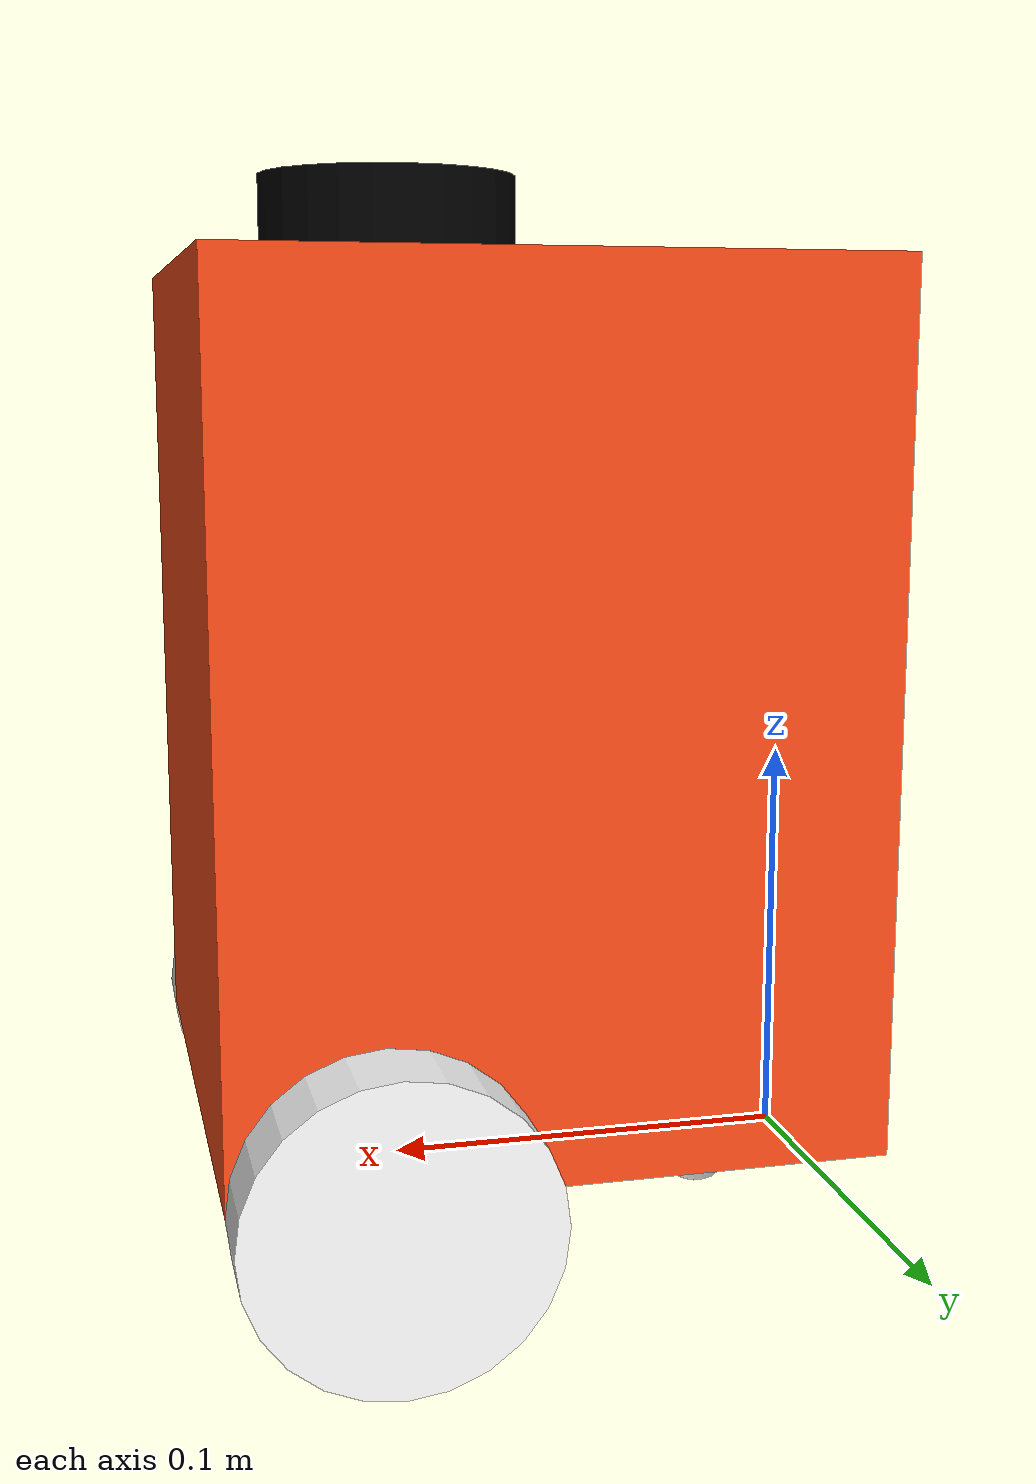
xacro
<?xml version="1.0"?>
<robot xmlns:xacro="http://www.ros.org/wiki/xacro" name="robot2">

    <xacro:include filename="inertia.xacro"/>

    <material name="white">
        <color rgba="1 1 1 1" />
    </material>

    <material name="orange">
        <color rgba="1 0.3 0.1 1"/>
    </material>

    <material name="blue">
        <color rgba="0.2 0.2 1 1"/>
    </material>

    <material name="black">
        <color rgba="0 0 0 1"/>
    </material>

    <!-- BASE LINK -->

    <link name="base_link2">
    </link>

    <!-- CHASSIS LINK -->

    <joint name="/robot2/chassis_joint" type="fixed">
        <parent link="base_link2"/>
        <child link="/robot2/chassis"/>
        <origin xyz="0 0 0.02"/>
    </joint>

    <link name="/robot2/chassis">
        <visual>
            <origin xyz="0.075 0 0.1"/>
            <geometry>
                <box size="0.15 0.15 0.2"/>
            </geometry>
            <material name="orange"/>
        </visual>
        <collision>
            <origin xyz="0.075 0 0.1"/>
            <geometry>
                <box size="0.15 0.15 0.2"/>
            </geometry>
        </collision>
        <xacro:inertial_box mass="1" x="0.15" y="0.15" z="0.3">
            <origin xyz="0.075 0 0.1" rpy="0 0 0"/>
        </xacro:inertial_box>
    </link>
    <gazebo reference="/robot2/chassis">
        <material>Gazebo/Orange</material>
    </gazebo>

    <!-- LEFT WHEEL LINK -->

    <joint name="/robot2/left_wheel_joint" type="continuous">
        <parent link="/robot2/chassis"/>
        <child link="/robot2/left_wheel"/>
        <origin xyz="0.115 0.085 0" rpy="-${pi/2} 0 0" />
        <axis xyz="0 0 1"/>
    </joint>

    <link name="/robot2/left_wheel">
        <visual>
            <geometry>
                <cylinder radius="0.035" length="0.02"/>
            </geometry>
            <material name="white"/>
        </visual>
        <collision>
            <geometry>
                <cylinder radius="0.035" length="0.02"/>
            </geometry>
        </collision>
        <xacro:inertial_cylinder mass="0.05" length="0.02" radius="0.035">
            <origin xyz="0 0 0" rpy="0 0 0"/>
        </xacro:inertial_cylinder>
    </link>

    <gazebo reference="/robot2/left_wheel">
        <material>Gazebo/White</material>
    </gazebo>

    <!-- RIGHT WHEEL LINK -->

    <joint name="/robot2/right_wheel_joint" type="continuous">
        <parent link="/robot2/chassis"/>
        <child link="/robot2/right_wheel"/>
        <origin xyz="0.115 -0.085 0" rpy="${pi/2} 0 0" />
        <axis xyz="0 0 -1"/>
    </joint>

    <link name="/robot2/right_wheel">
        <visual>
            <geometry>
                <cylinder radius="0.035" length="0.02"/>
            </geometry>
            <material name="white"/>
        </visual>
        <collision>
            <geometry>
                <cylinder radius="0.035" length="0.02"/>
            </geometry>
        </collision>
        <xacro:inertial_cylinder mass="0.05" length="0.02" radius="0.035">
            <origin xyz="0 0 0" rpy="0 0 0"/>
        </xacro:inertial_cylinder>
    </link>

    <gazebo reference="/robot2/right_wheel">
        <material>Gazebo/White</material>
    </gazebo>

    <!-- DIFF DRIVE GAZEBO PLUGIN -->
    <gazebo>
        <plugin name="diff_drive_robot2" filename="libgazebo_ros_diff_drive.so">

            <!-- Wheel Information -->
            <left_joint>/robot2/left_wheel_joint</left_joint>
            <right_joint>/robot2/right_wheel_joint</right_joint>
            <wheel_separation>0.17</wheel_separation>
            <wheel_diameter>0.07</wheel_diameter>

            <!-- Limits -->
            <max_wheel_torque>50</max_wheel_torque>
            <max_wheel_acceleration>50.0</max_wheel_acceleration>

            <!-- Output -->
            <odometry_frame>odom</odometry_frame>
            <robot_base_frame>base_link2</robot_base_frame>

            <publish_odom>true</publish_odom>
            <publish_odom_tf>true</publish_odom_tf>
            <publish_wheel_tf>true</publish_wheel_tf>

            <!-- ROS namespace and remapping -->
            <ros>
                <namespace>/robot2</namespace>
                <remapping>cmd_vel:=/robot2/cmd_vel</remapping>

            </ros>
        </plugin>
    </gazebo>

    <!-- LIDAR LINK -->
    <joint name="/robot2/laser_joint" type="fixed">
        <parent link="/robot2/chassis"/>
        <child link="laser_frame_2"/>
        <origin xyz="0.1 0 0.200" rpy="0 0 0"/>
    </joint>

    <link name="laser_frame_2">
        <visual>
            <geometry>
                <cylinder radius="0.03" length="0.04"/>
            </geometry>
            <material name="black"/>
        </visual>
        <collision>
            <geometry>
                <cylinder radius="0.03" length="0.04"/>
            </geometry>
        </collision>
        <xacro:inertial_cylinder mass="0.1" length="0.04" radius="0.05">
            <origin xyz="0 0 0" rpy="0 0 0"/>
        </xacro:inertial_cylinder>
    </link>

    <gazebo reference="laser_frame_2">
        <material>Gazebo/Black</material>
        <sensor name="laser" type="ray">
            <pose> 0 0 0 0 0 0 </pose>
            <visualize>true</visualize>
            <update_rate>10</update_rate>
            <ray>
                <scan>
                    <horizontal>
                        <samples>360</samples>
                        <min_angle>-3.14</min_angle>
                        <max_angle>3.14</max_angle>
                    </horizontal>
                </scan>
                <range>
                    <min>0.3</min>
                    <max>4</max>
                </range>
            </ray>
            <plugin name="laser_controller_robot2" filename="libgazebo_ros_ray_sensor.so">
                <ros>
                    <argument>~/out:=scan_robot2</argument>
                </ros>
                <output_type>sensor_msgs/LaserScan</output_type>
                <frame_name>laser_frame_2</frame_name>
            </plugin>
        </sensor>
    </gazebo>

    <!-- CASTER WHEEL LINK -->

    <joint name="/robot2/caster_wheel_joint_cylinder" type="fixed">
        <parent link="/robot2/chassis"/>
        <child link="/robot2/caster_wheel_cylinder"/>
        <origin xyz="0.02 0 0"/>
    </joint>

    <link name="/robot2/caster_wheel_cylinder">
        <visual>
            <geometry>
                <cylinder radius="0.01" length="0.05"/>
            </geometry>
            <material name="black"/>
        </visual>
        <collision>
            <geometry>
                <cylinder radius="0.01" length="0.05"/>
            </geometry>
        </collision>
        <xacro:inertial_cylinder mass="0.5" length="0.05" radius="0.01">
            <origin xyz="0 0 0" rpy="0 0 0"/>
        </xacro:inertial_cylinder>
    </link>

    <gazebo reference="/robot2/caster_wheel_cylinder">
        <material>Gazebo/Black</material>

    </gazebo>

    <joint name="/robot2/caster_wheel_joint_sphere" type="fixed">
        <parent link="/robot2/chassis"/>
        <child link="/robot2/caster_wheel_sphere"/>
        <origin xyz="0.02 0 -0.025"/>
    </joint>

    <link name="/robot2/caster_wheel_sphere">
        <visual>
            <geometry>
                <sphere radius="0.01"/>
            </geometry>
            <material name="white"/>
        </visual>
        <collision>
            <geometry>
                <sphere radius="0.01"/>
            </geometry>
        </collision>
        <xacro:inertial_sphere mass="0.5" radius="0.01">
            <origin xyz="0 0 0" rpy="0 0 0"/>
        </xacro:inertial_sphere>
    </link>

    <gazebo reference="/robot2/caster_wheel_sphere">
        <material>Gazebo/White</material>
        <mu1 value = "0.001"/>
        <mu2 value = "0.001"/>
    </gazebo>

</robot>
